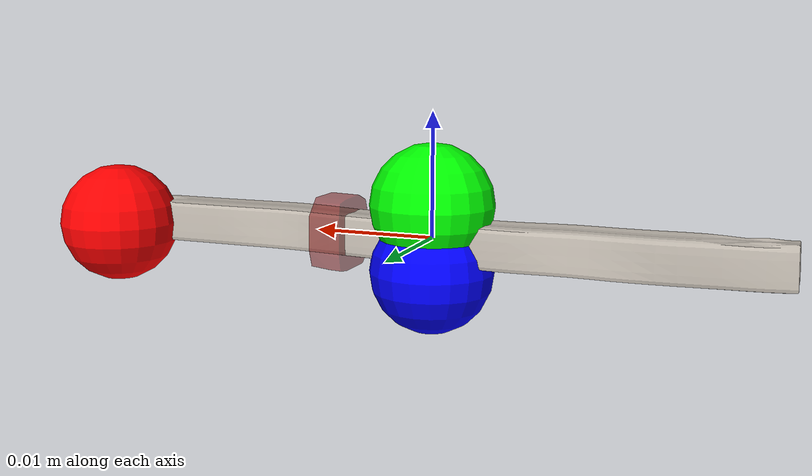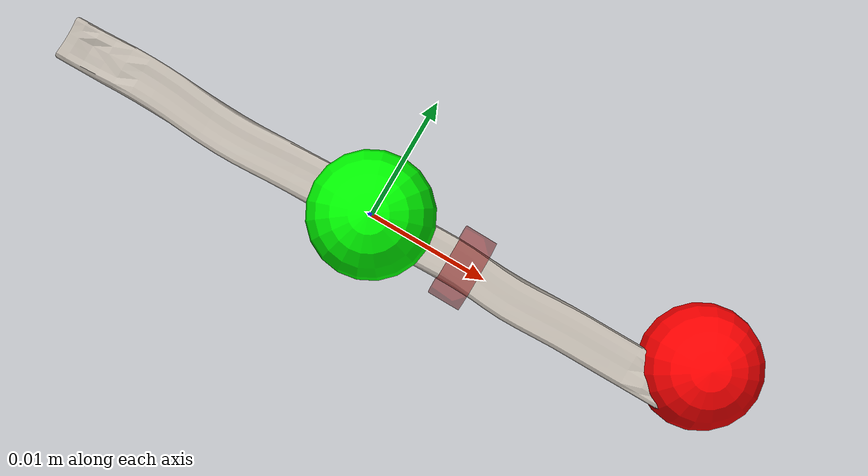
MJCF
<?xml version='1.0' encoding='UTF-8'?>
<mujoco model="model">
  <compiler angle="radian"/>
  <asset>
    <mesh file="visual/CreamCheese004.obj" name="CreamCheese004_vis"/>
    <texture file="visual/T_BC001.png" name="CreamCheese004_material" type="2d"/>
    <material name="CreamCheese004_material" rgba="1 1 1 1.0" texture="CreamCheese004_material" shininess="0.5" specular="0.3103448502657381"/>
    <mesh file="collision/CreamCheese004001.obj" name="CreamCheese004001_mesh"/>
  </asset>
  <default>
    <default class="visual">
      <geom conaffinity="0" contype="0" group="1" type="mesh"/>
    </default>
    <default class="collision">
      <geom group="0" rgba="0.5 0 0 0.5"/>
    </default>
    <default class="spawn">
      <geom group="0" rgba="1 1 1 0.5" contype="0" conaffinity="0"/>
      <site group="0" rgba="1 1 1 0.5"/>
    </default>
    <default class="region">
      <geom group="1" conaffinity="0" contype="0" rgba="0 1 0 0"/>
    </default>
  </default>
  <worldbody>
    <body>
      <body name="object">
        <geom mesh="CreamCheese004_vis" type="mesh" solimp="0.998 0.998 0.001" solref="0.001 1" density="100" friction="0.95 0.3 0.1" class="visual" material="CreamCheese004_material"/>
        <geom mesh="CreamCheese004001_mesh" type="mesh" class="collision"/>
      </body>
      <site rgba="1 0 0 1" size="0.005" pos="0.027815 0.0026772599999999994 -4.190000000000036e-05" name="horizontal_radius_site"/>
      <site rgba="0 1 0 1" size="0.005" pos="3.201499999999935e-05 -2.1245000000000272e-05 0.002610119999999999" name="top_site"/>
      <site rgba="0 0 1 1" size="0.005" pos="3.201499999999935e-05 -2.1245000000000272e-05 -0.0026939200000000003" name="bottom_site"/>
    </body>
  </worldbody>
  <actuator/>
</mujoco>
